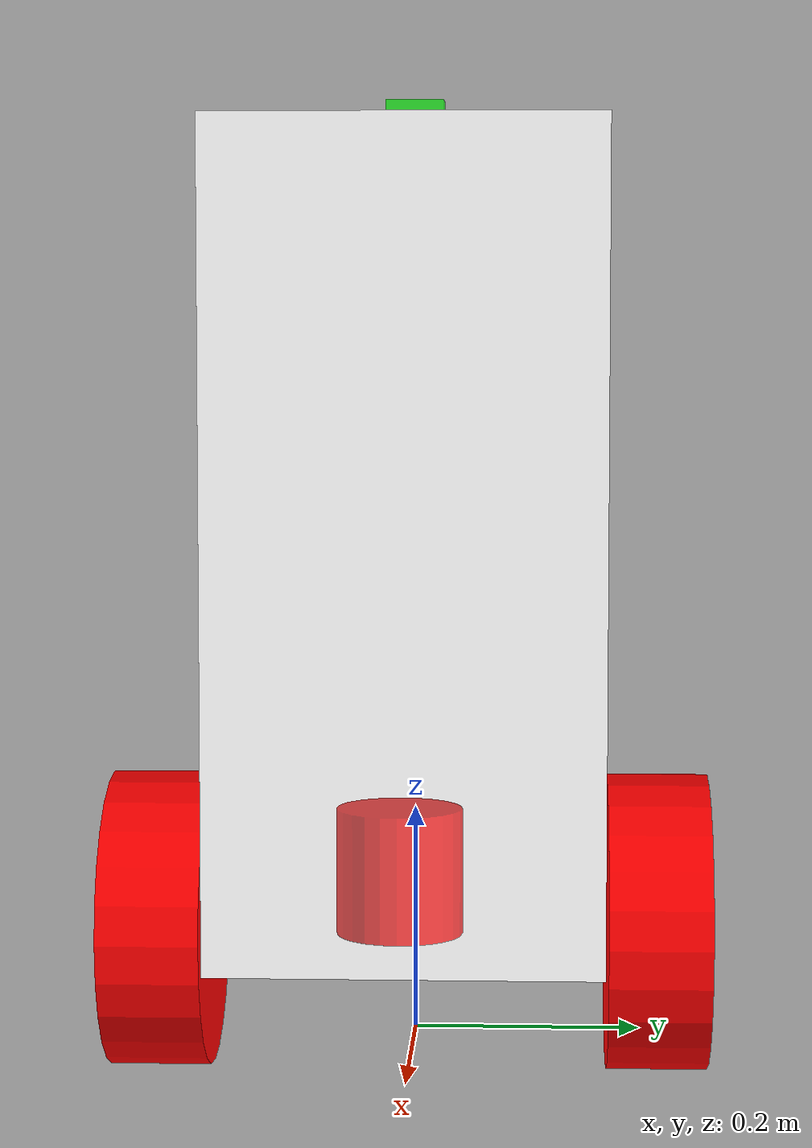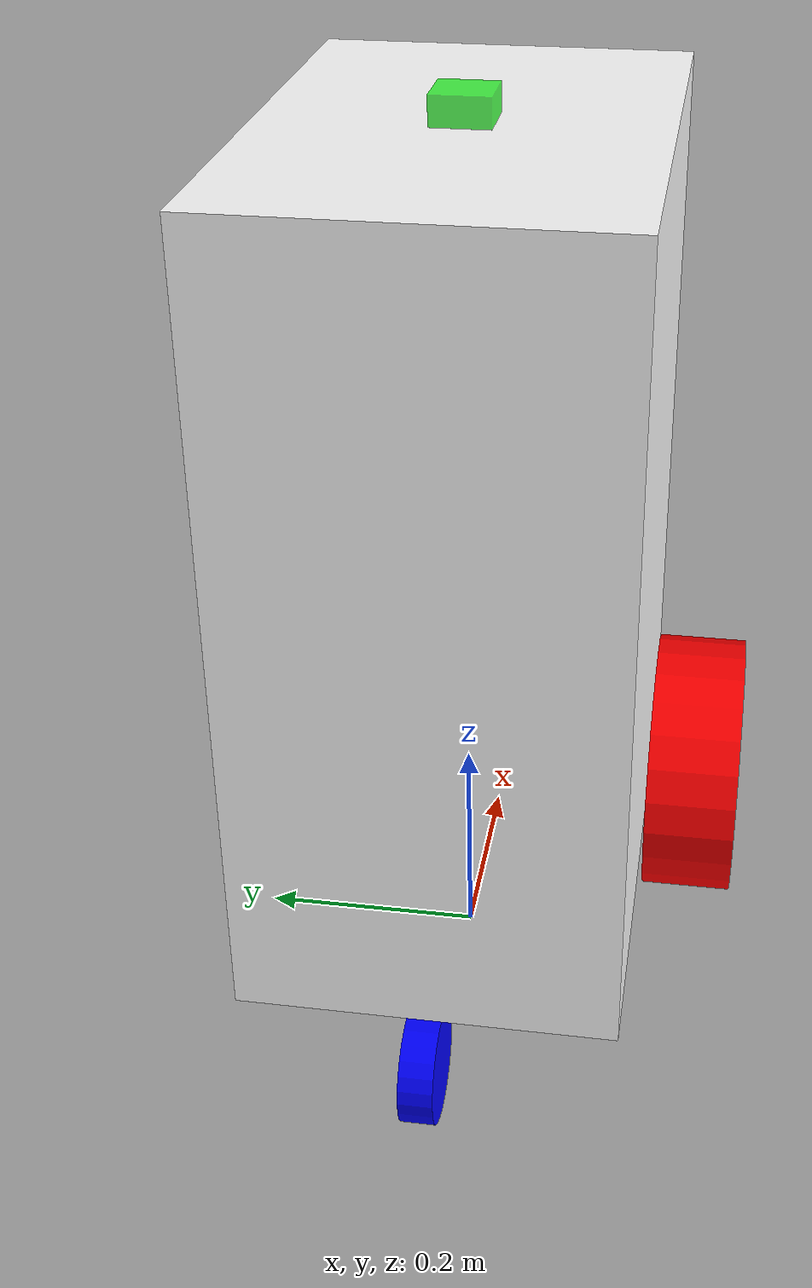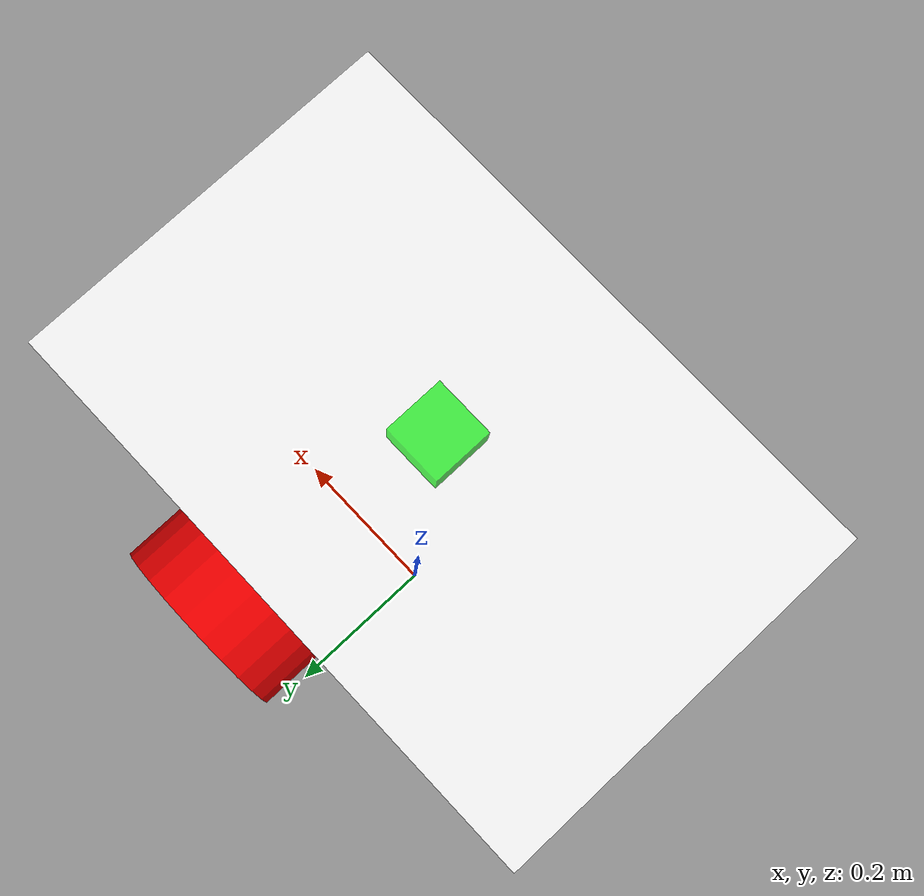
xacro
<?xml version="1.0"?>
<robot name="diff_drive" xmlns:xacro="http://www.ros.org/wiki/xacro">

    <xacro:include filename="$(find ouagv_robot_description)/xacro/wheel.urdf.xacro" />
    <xacro:include filename="$(find ouagv_robot_description)/xacro/ros2_control.xacro" />
    <xacro:include filename="$(find ouagv_robot_description)/xacro/body.urdf.xacro" />
    <xacro:include filename="$(find ouagv_robot_description)/xacro/caster.urdf.xacro" />
    <xacro:include filename="$(find ouagv_robot_description)/xacro/lidar.xacro" />
    <xacro:include filename="$(find ouagv_robot_description)/xacro/imu.xacro" />

    <xacro:body />
    <xacro:wheel prefix="left" parent="base_link" xyz="0.125 0.21 0.125" rpy="-1.5707 0 0" />
    <xacro:wheel prefix="right" parent="base_link" xyz="0.125 -0.21 0.125" rpy="-1.5707 0 0" />
    <xacro:caster parent="base_link" xyz="-0.25 0 0.05" rpy="1.57 0 0" />
    <xacro:lidar parent="base_link" xyz="0.3 0 0.2" rpy="0 0 0" />
    <xacro:imu parent="base_link" xyz="0 0 0.8" rpy="0 0 0" />

    <gazebo>
        <!-- Joint state publisher -->
        <plugin name="diff_drive" filename="libgazebo_ros_diff_drive.so">
            <ros>
                <remapping>cmd_vel:=cmd_vel</remapping>
                <namespace>/diff_drive_base_controller</namespace>
                <remapping>odom:=odom</remapping>
            </ros>
            <left_joint>left_wheel_joint</left_joint>
            <right_joint>right_wheel_joint</right_joint>
            <wheel_separation>0.42</wheel_separation>
            <wheel_radius>0.125</wheel_radius>
            <max_wheel_torque>20</max_wheel_torque>
            <max_wheel_acceleration>1.0</max_wheel_acceleration>
            <publish_odom>true</publish_odom>
            <publish_odom_tf>false</publish_odom_tf>
            <publish_wheel_tf>true</publish_wheel_tf>
            <update_rate>30</update_rate>

            <odometry_topic>odom</odometry_topic>
            <odometry_frame>odom</odometry_frame>
            <base_frame_id>base_link</base_frame_id>
            <robot_base_frame>base_link</robot_base_frame>
            <command_topic>cmd_vel</command_topic>
        </plugin>
    </gazebo>

</robot>

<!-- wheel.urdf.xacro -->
<robot xmlns:xacro="http://www.ros.org/wiki/xacro" name="wheel">
    <xacro:macro name="wheel" params="prefix parent xyz:='0 0 0' rpy:='0 0 0'">
        <joint name="${prefix}_wheel_joint" type="continuous">
            <origin xyz="${xyz}" rpy="${rpy}" />
            <parent link="${parent}" />
            <child link="${prefix}_wheel" />
            <axis xyz="0 0 1" />
            <dynamics damping="0.2" />
        </joint>
        <transmission name="${prefix}_trans" type="SimpleTransmission">
            <type>transmission_interface/SimpleTransmission</type>
            <actuator name="${prefix}_motor">
                <!-- ギア比 -->
                <mechanicalReduction>1</mechanicalReduction>
            </actuator>
            <joint name="${prefix}_wheel_joint">
                <hardwareInterface>hardware_interface/VelocityJointInterface</hardwareInterface>
            </joint>
        </transmission>

        <!-- ${prefix} wheel Link -->
        <link name="${prefix}_wheel">
            <collision>
                <geometry>
                    <cylinder radius="0.125" length="0.085" />
                </geometry>
            </collision>

            <visual>
                <geometry>
                    <cylinder radius="0.125" length="0.085" />
                </geometry>
                <material name="red">
                    <color rgba="1 0 0 1" />
                </material>
            </visual>
            <inertial>
                <mass value="1.7" />
                <inertia ixx="0.1"
                    ixy="0.0"
                    ixz="0.0"
                    iyy="0.1"
                    iyz="0.0"
                    izz="0.1" />
            </inertial>
        </link>
        <gazebo reference="${prefix}_wheel">
            <material>Gazebo/Red</material>
        </gazebo>
    </xacro:macro>
</robot>

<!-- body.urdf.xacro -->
<robot xmlns:xacro="http://www.ros.org/wiki/xacro" name="body">
    <xacro:macro name="body" params="">
        <!-- Base Link -->
        <link name="base_link">
            <collision>
                <origin xyz="0 0 0.45" rpy="0 0 0" />
                <geometry>
                    <box size="0.5 0.33 0.7" />
                </geometry>
            </collision>

            <visual>
                <origin xyz="0 0 0.45" rpy="0 0 0" />
                <geometry>
                    <box size="0.5 0.33 0.7" />
                </geometry>
                <material name="white">
                    <color rgba="1 1 1 1" />
                </material>
            </visual>

            <inertial>
                <origin xyz="0 0 0.45" rpy="0 0 0" />
                <mass value="30" />
                <inertia
                    ixx="0.1"
                    ixy="0.0"
                    ixz="0.0"
                    iyy="0.1"
                    iyz="0.0"
                    izz="0.1" />
            </inertial>
        </link>
        <gazebo reference="base_link">
            <material>Gazebo/White</material>
        </gazebo>
    </xacro:macro>
</robot>

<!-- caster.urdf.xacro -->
<robot xmlns:xacro="http://www.ros.org/wiki/xacro" name="caster">
    <xacro:macro name="caster" params="parent xyz:='0 0 0' rpy:='0 0 0'">
        <joint name="caster_joint" type="fixed">
            <origin xyz="${xyz}" rpy="${rpy}" />
            <parent link="${parent}" />
            <child link="caster" />
        </joint>

        <!-- caster frontal wheel Link -->
        <link name="caster">
            <collision>
                <geometry>
                    <cylinder radius="0.05" length="0.03" />
                </geometry>
            </collision>

            <visual>
                <geometry>
                    <cylinder radius="0.05" length="0.03" />
                </geometry>
                <material name="blue">
                    <color rgba="0 0 1 1" />
                </material>
            </visual>

            <inertial>
                <origin xyz="-0.957138 -0 0.2" rpy="0 0 0" />
                <mass value="1.1" />
                <inertia
                    ixx="0.1"
                    ixy="0.0"
                    ixz="0.0"
                    iyy="0.1"
                    iyz="0.0"
                    izz="0.1" />
            </inertial>
        </link>
        <gazebo reference="caster">
            <material>Gazebo/Blue</material>
        </gazebo>
    </xacro:macro>
</robot>

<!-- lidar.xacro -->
<robot xmlns:xacro="http://www.ros.org/wiki/xacro" name="lidar">
    <xacro:macro name="lidar" params="parent xyz:='0 0 0' rpy:='0 0 0'">
        <!-- add lidar joint -->
        <joint name="lidar_joint" type="fixed">
            <origin xyz="${xyz}" rpy="${rpy}" />
            <parent link="${parent}" />
            <child link="lidar_link" />
            <axis xyz="0.0 0.0 1.0" />
        </joint>
        <link name="lidar_link">
            <inertial>
                <mass value="0.3" />
                <inertia ixx="0.01" ixy="0.0" ixz="0" iyy="0.01" iyz="0" izz="0.01" />
            </inertial>
            <visual>
                <geometry>
                    <cylinder radius="0.05" length="0.1" />
                </geometry>
                <material name="red">
                    <color rgba="1 0 0 0.7" />
                </material>
            </visual>
        </link>
        <gazebo reference="lidar_link">
            <material>Gazebo/Red</material>
            <sensor name="gazebo_lidar" type="ray">
                <always_on>true</always_on>
                <visualize>true</visualize>
                <update_rate>20</update_rate>
                <pose>0 0 0 0 0 0</pose>
                <plugin filename="libgazebo_ros_ray_sensor.so" name="gazebo_lidar">
                    <ros>
                        <remapping>~/out:=scan</remapping>
                    </ros>
                    <output_type>sensor_msgs/LaserScan</output_type>
                    <frame_name>lidar_link</frame_name>
                </plugin>
                <ray>
                    <scan>
                        <horizontal>
                            <samples>640</samples>
                            <resolution>1.000000</resolution>
                            <min_angle>-1.396263402</min_angle>
                            <max_angle>1.396263402</max_angle>
                        </horizontal>
                    </scan>
                    <range>
                        <min>0.1</min>
                        <max>15.0</max>
                        <resolution>0.01</resolution>
                    </range>
                    <noise>
                        <type>gaussian</type>
                        <mean>0.0</mean>
                        <stddev>0.01</stddev>
                    </noise>
                </ray>
            </sensor>
        </gazebo>
    </xacro:macro>
</robot>

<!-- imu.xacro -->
<robot xmlns:xacro="http://www.ros.org/wiki/xacro" name="imu">
    <xacro:macro name="imu" params="parent xyz:='0 0 0' rpy:='0 0 0'">
        <!-- add imu object -->
        <joint name="imu_joint" type="fixed">
            <origin xyz="${xyz}" rpy="${rpy}" />
            <parent link="${parent}" />
            <child link="imu_link" />
            <axis xyz="0 0 1.0" />
        </joint>
        <link name="imu_link">
            <visual>
                <inertial>
                    <mass value="0.3" />
                    <inertia ixx="0.01" ixy="0.0" ixz="0" iyy="0.01" iyz="0" izz="0.01" />
                </inertial>
                <geometry>
                    <box size="0.05 0.05 0.05" />
                </geometry>
                <material name="green">
                    <color rgba="0 1 0 0.7" />
                </material>
            </visual>
            <collision>
                <geometry>
                    <box size="0.05 0.05 0.05" />
                </geometry>
            </collision>
        </link>
        <gazebo reference="imu_link">
            <material>Gazebo/Blue</material>
            <sensor name="my_imu" type="imu">
                <always_on>true</always_on>
                <!-- Publish at 30 hz -->
                <update_rate>50</update_rate>
                <plugin name="my_imu_plugin" filename="libgazebo_ros_imu_sensor.so">
                    <ros>
                        <!-- Will publish to /imu/data -->
                        <namespace>/imu</namespace>
                        <remapping>~/out:=data</remapping>
                    </ros>
                    <!-- frame_name ommited, will be "my_link" -->
                </plugin>
            </sensor>
        </gazebo>

    </xacro:macro>
</robot>
